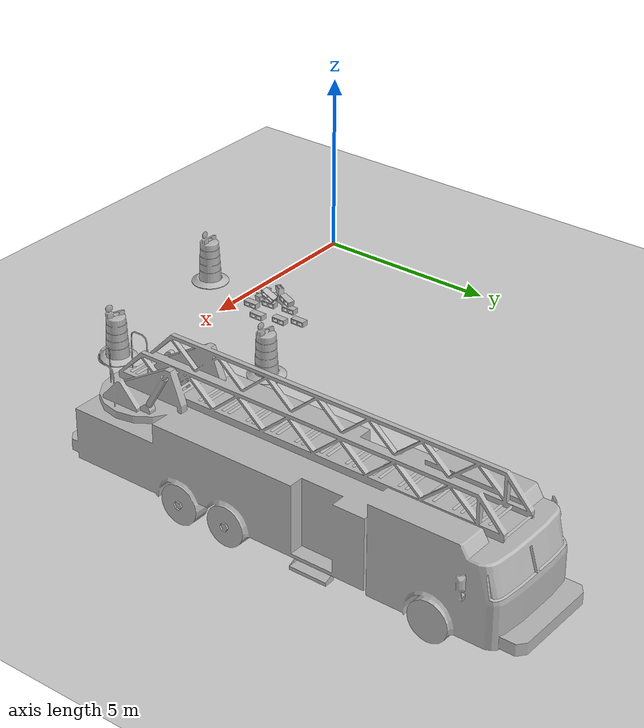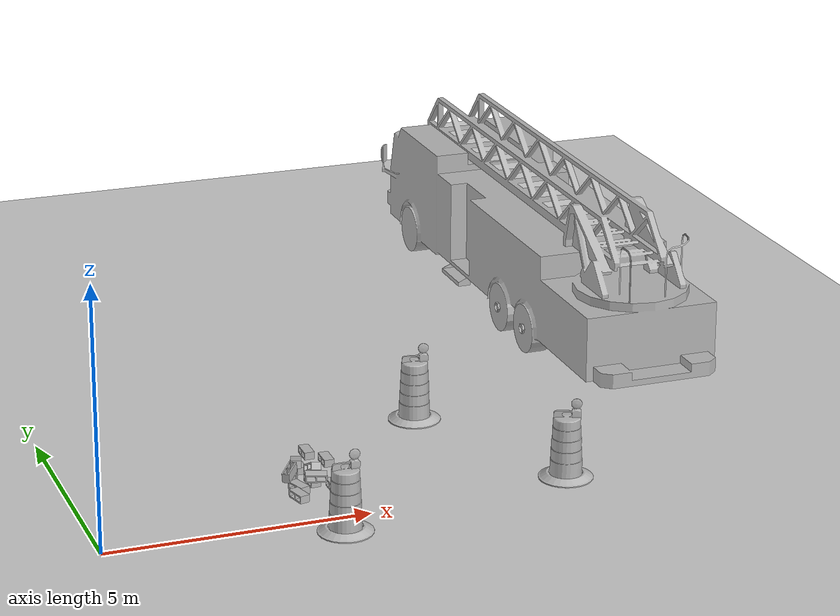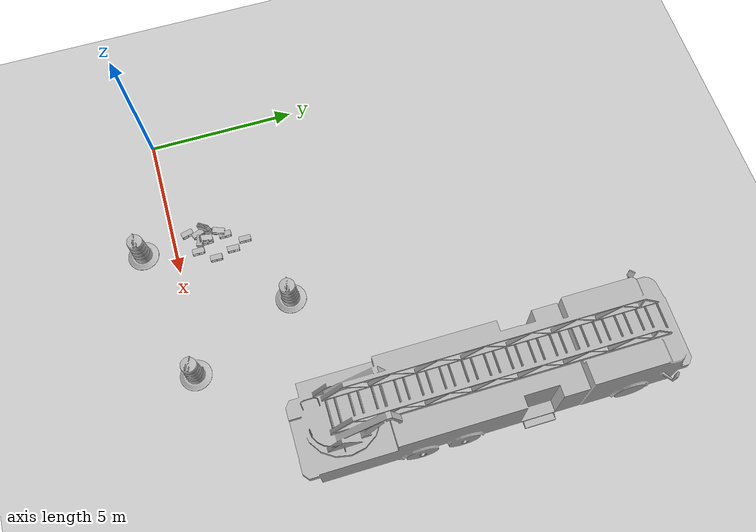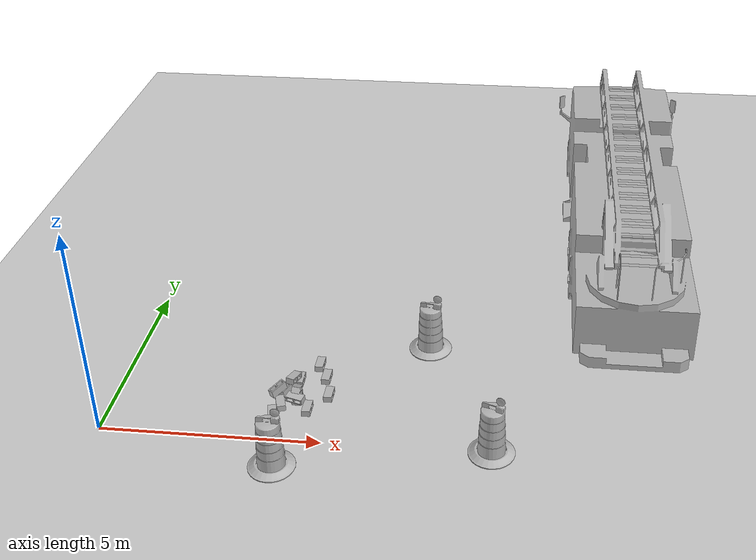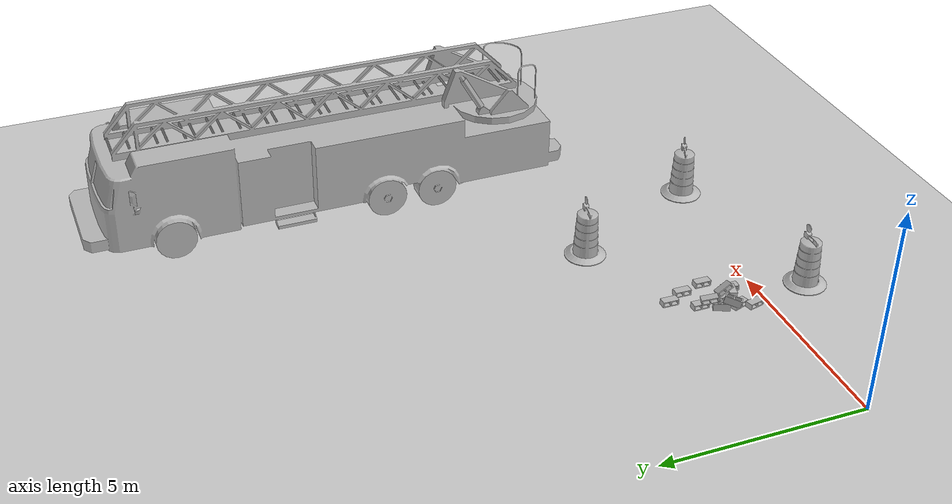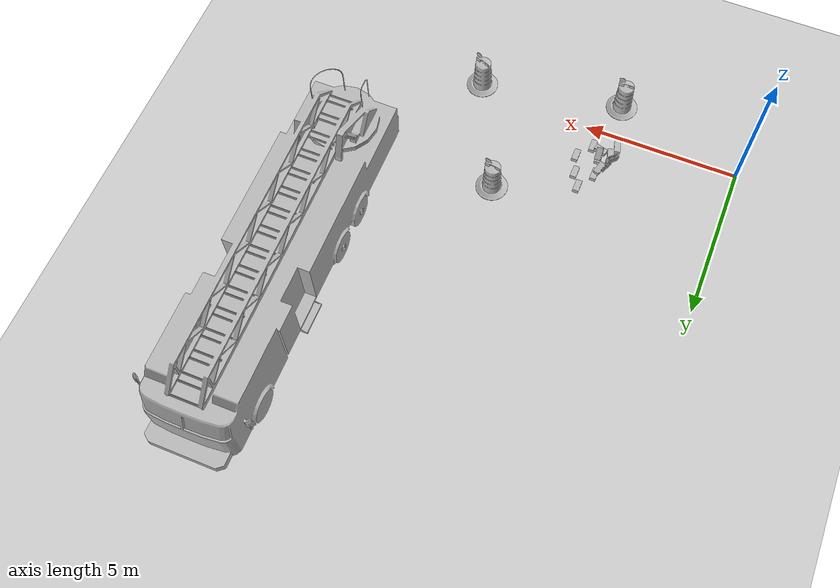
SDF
<sdf version="1.7">
 <world name="default">
  <model name="ground_plane">
   <static>1</static>
   <link name="link">
    <collision name="collision">
     <geometry><plane><normal>0 0 1</normal><size>100 100</size></plane></geometry>
     <surface><friction><ode><mu>100</mu><mu2>50</mu2></ode></friction></surface>
    </collision>
    <visual name="visual">
     <cast_shadows>0</cast_shadows>
     <geometry><plane><normal>0 0 1</normal><size>100 100</size></plane></geometry>
     <material>
      <script><uri>file://media/materials/scripts/gazebo.material</uri><name>Gazebo/Grey</name></script>
     </material>
    </visual>
   </link>
  </model>
  <model name="Construction Barrel_0">
   <link name="link">
    <inertial>
     <pose>0 0 0.4 0 -0 0</pose>
     <mass>500</mass>
     <inertia><ixx>51.2096</ixx><iyy>51.2096</iyy><izz>25</izz><ixy>0</ixy><ixz>0</ixz><iyz>0</iyz></inertia>
    </inertial>
    <collision name="collision">
     <geometry><mesh><uri>model://construction_barrel/meshes/construction_barrel.dae</uri></mesh></geometry>
    </collision>
    <visual name="visual">
     <geometry><mesh><uri>model://construction_barrel/meshes/construction_barrel.dae</uri></mesh></geometry>
    </visual>
   </link>
   <pose>4.15828 -1.02697 0.228145 0 -0 -0.010706</pose>
  </model>
  <model name="Construction Barrel_1">
   <link name="link">
    <inertial>
     <pose>0 0 0.4 0 -0 0</pose>
     <mass>500</mass>
     <inertia><ixx>51.2096</ixx><iyy>51.2096</iyy><izz>25</izz><ixy>0</ixy><ixz>0</ixz><iyz>0</iyz></inertia>
    </inertial>
    <collision name="collision">
     <geometry><mesh><uri>model://construction_barrel/meshes/construction_barrel.dae</uri></mesh></geometry>
    </collision>
    <visual name="visual">
     <geometry><mesh><uri>model://construction_barrel/meshes/construction_barrel.dae</uri></mesh></geometry>
    </visual>
   </link>
   <pose>7.05759 3.3172 0.228144 6e-06 -4e-06 -0.152859</pose>
  </model>
  <model name="Construction Barrel_2">
   <link name="link">
    <inertial>
     <pose>0 0 0.4 0 -0 0</pose>
     <mass>500</mass>
     <inertia><ixx>51.2096</ixx><iyy>51.2096</iyy><izz>25</izz><ixy>0</ixy><ixz>0</ixz><iyz>0</iyz></inertia>
    </inertial>
    <collision name="collision">
     <geometry><mesh><uri>model://construction_barrel/meshes/construction_barrel.dae</uri></mesh></geometry>
    </collision>
    <visual name="visual">
     <geometry><mesh><uri>model://construction_barrel/meshes/construction_barrel.dae</uri></mesh></geometry>
    </visual>
   </link>
   <pose>8.71691 -0.188469 0.228136 0 0 -0.36822</pose>
  </model>
  <model name="fire_truck">
   <static>1</static>
   <link name="link">
    <collision name="collision">
     <geometry>
      <mesh><scale>0.1 0.1 0.1</scale><uri>model://fire_truck/meshes/fire_truck.obj</uri></mesh>
     </geometry>
    </collision>
    <visual name="visual">
     <geometry>
      <mesh><scale>0.1 0.1 0.1</scale><uri>model://fire_truck/meshes/fire_truck.obj</uri></mesh>
     </geometry>
    </visual>
   </link>
   <pose>11.8116 8.84747 0.235461 0 -0 0</pose>
  </model>
  <model name="cinder_block_2">
   <link name="link">
    <inertial>
     <pose>0 0 0.071438 0 -0 0</pose>
     <mass>5</mass>
     <inertia>
      <ixx>0.06908</ixx>
      <ixy>0</ixy>
      <iyy>0.028705</iyy>
      <ixz>0</ixz>
      <iyz>0</iyz>
      <izz>0.073708</izz>
     </inertia>
    </inertial>
    <visual name="visual">
     <geometry><mesh><uri>model://cinder_block_2/meshes/cinder_block.dae</uri></mesh></geometry>
    </visual>
    <collision name="top">
     <pose>0 0 0.130175 0 -0 0</pose>
     <geometry><box><size>0.19368 0.396875 0.0254</size></box></geometry>
     <surface>
      <contact><ode><max_vel>0.1</max_vel><min_depth>0.001</min_depth></ode></contact>
      <friction><ode><mu>1</mu><mu2>1</mu2></ode></friction>
     </surface>
    </collision>
    <collision name="bottom">
     <pose>0 0 0.0127 0 -0 0</pose>
     <geometry><box><size>0.19368 0.396875 0.0254</size></box></geometry>
     <surface>
      <contact><ode><max_vel>0.1</max_vel><min_depth>0.001</min_depth></ode></contact>
      <friction><ode><mu>1</mu><mu2>1</mu2></ode></friction>
     </surface>
    </collision>
    <collision name="left">
     <pose>0 -0.185738 0.071438 0 -0 0</pose>
     <geometry><box><size>0.19368 0.0254 0.092075</size></box></geometry>
     <surface>
      <contact><ode><max_vel>0.1</max_vel><min_depth>0.001</min_depth></ode></contact>
      <friction><ode><mu>1</mu><mu2>1</mu2></ode></friction>
     </surface>
    </collision>
    <collision name="right">
     <pose>0 0.185738 0.071438 0 -0 0</pose>
     <geometry><box><size>0.19368 0.0254 0.092075</size></box></geometry>
     <surface>
      <contact><ode><max_vel>0.1</max_vel><min_depth>0.001</min_depth></ode></contact>
      <friction><ode><mu>1</mu><mu2>1</mu2></ode></friction>
     </surface>
    </collision>
    <collision name="middle">
     <pose>0 0 0.071438 0 -0 0</pose>
     <geometry><box><size>0.19368 0.0254 0.092075</size></box></geometry>
     <surface>
      <contact><ode><max_vel>0.1</max_vel><min_depth>0.001</min_depth></ode></contact>
      <friction><ode><mu>1</mu><mu2>1</mu2></ode></friction>
     </surface>
    </collision>
   </link>
   <pose>4.25382 1.12264 0.228121 4.9e-05 -0.000828 0.045278</pose>
  </model>
  <model name="cinder_block_2_clone">
   <link name="link">
    <inertial>
     <pose>0 0 0.071438 0 -0 0</pose>
     <mass>5</mass>
     <inertia>
      <ixx>0.06908</ixx>
      <ixy>0</ixy>
      <iyy>0.028705</iyy>
      <ixz>0</ixz>
      <iyz>0</iyz>
      <izz>0.073708</izz>
     </inertia>
    </inertial>
    <visual name="visual">
     <geometry><mesh><uri>model://cinder_block_2/meshes/cinder_block.dae</uri></mesh></geometry>
    </visual>
    <collision name="top">
     <pose>0 0 0.130175 0 -0 0</pose>
     <geometry><box><size>0.19368 0.396875 0.0254</size></box></geometry>
     <surface>
      <contact><ode><max_vel>0.1</max_vel><min_depth>0.001</min_depth></ode></contact>
      <friction><ode><mu>1</mu><mu2>1</mu2></ode></friction>
     </surface>
    </collision>
    <collision name="bottom">
     <pose>0 0 0.0127 0 -0 0</pose>
     <geometry><box><size>0.19368 0.396875 0.0254</size></box></geometry>
     <surface>
      <contact><ode><max_vel>0.1</max_vel><min_depth>0.001</min_depth></ode></contact>
      <friction><ode><mu>1</mu><mu2>1</mu2></ode></friction>
     </surface>
    </collision>
    <collision name="left">
     <pose>0 -0.185738 0.071438 0 -0 0</pose>
     <geometry><box><size>0.19368 0.0254 0.092075</size></box></geometry>
     <surface>
      <contact><ode><max_vel>0.1</max_vel><min_depth>0.001</min_depth></ode></contact>
      <friction><ode><mu>1</mu><mu2>1</mu2></ode></friction>
     </surface>
    </collision>
    <collision name="right">
     <pose>0 0.185738 0.071438 0 -0 0</pose>
     <geometry><box><size>0.19368 0.0254 0.092075</size></box></geometry>
     <surface>
      <contact><ode><max_vel>0.1</max_vel><min_depth>0.001</min_depth></ode></contact>
      <friction><ode><mu>1</mu><mu2>1</mu2></ode></friction>
     </surface>
    </collision>
    <collision name="middle">
     <pose>0 0 0.071438 0 -0 0</pose>
     <geometry><box><size>0.19368 0.0254 0.092075</size></box></geometry>
     <surface>
      <contact><ode><max_vel>0.1</max_vel><min_depth>0.001</min_depth></ode></contact>
      <friction><ode><mu>1</mu><mu2>1</mu2></ode></friction>
     </surface>
    </collision>
   </link>
   <pose>4.24985 1.0905 0.481159 -0.500722 0.170876 0.000211</pose>
  </model>
  <model name="cinder_block_2_clone_0">
   <link name="link">
    <inertial>
     <pose>0 0 0.071438 0 -0 0</pose>
     <mass>5</mass>
     <inertia>
      <ixx>0.06908</ixx>
      <ixy>0</ixy>
      <iyy>0.028705</iyy>
      <ixz>0</ixz>
      <iyz>0</iyz>
      <izz>0.073708</izz>
     </inertia>
    </inertial>
    <visual name="visual">
     <geometry><mesh><uri>model://cinder_block_2/meshes/cinder_block.dae</uri></mesh></geometry>
    </visual>
    <collision name="top">
     <pose>0 0 0.130175 0 -0 0</pose>
     <geometry><box><size>0.19368 0.396875 0.0254</size></box></geometry>
     <surface>
      <contact><ode><max_vel>0.1</max_vel><min_depth>0.001</min_depth></ode></contact>
      <friction><ode><mu>1</mu><mu2>1</mu2></ode></friction>
     </surface>
    </collision>
    <collision name="bottom">
     <pose>0 0 0.0127 0 -0 0</pose>
     <geometry><box><size>0.19368 0.396875 0.0254</size></box></geometry>
     <surface>
      <contact><ode><max_vel>0.1</max_vel><min_depth>0.001</min_depth></ode></contact>
      <friction><ode><mu>1</mu><mu2>1</mu2></ode></friction>
     </surface>
    </collision>
    <collision name="left">
     <pose>0 -0.185738 0.071438 0 -0 0</pose>
     <geometry><box><size>0.19368 0.0254 0.092075</size></box></geometry>
     <surface>
      <contact><ode><max_vel>0.1</max_vel><min_depth>0.001</min_depth></ode></contact>
      <friction><ode><mu>1</mu><mu2>1</mu2></ode></friction>
     </surface>
    </collision>
    <collision name="right">
     <pose>0 0.185738 0.071438 0 -0 0</pose>
     <geometry><box><size>0.19368 0.0254 0.092075</size></box></geometry>
     <surface>
      <contact><ode><max_vel>0.1</max_vel><min_depth>0.001</min_depth></ode></contact>
      <friction><ode><mu>1</mu><mu2>1</mu2></ode></friction>
     </surface>
    </collision>
    <collision name="middle">
     <pose>0 0 0.071438 0 -0 0</pose>
     <geometry><box><size>0.19368 0.0254 0.092075</size></box></geometry>
     <surface>
      <contact><ode><max_vel>0.1</max_vel><min_depth>0.001</min_depth></ode></contact>
      <friction><ode><mu>1</mu><mu2>1</mu2></ode></friction>
     </surface>
    </collision>
   </link>
   <pose>4.01765 1.30186 0.324991 -2.97102 -1.57061 2.58122</pose>
  </model>
  <model name="cinder_block_2_clone_2">
   <link name="link">
    <inertial>
     <pose>0 0 0.071438 0 -0 0</pose>
     <mass>5</mass>
     <inertia>
      <ixx>0.06908</ixx>
      <ixy>0</ixy>
      <iyy>0.028705</iyy>
      <ixz>0</ixz>
      <iyz>0</iyz>
      <izz>0.073708</izz>
     </inertia>
    </inertial>
    <visual name="visual">
     <geometry><mesh><uri>model://cinder_block_2/meshes/cinder_block.dae</uri></mesh></geometry>
    </visual>
    <collision name="top">
     <pose>0 0 0.130175 0 -0 0</pose>
     <geometry><box><size>0.19368 0.396875 0.0254</size></box></geometry>
     <surface>
      <contact><ode><max_vel>0.1</max_vel><min_depth>0.001</min_depth></ode></contact>
      <friction><ode><mu>1</mu><mu2>1</mu2></ode></friction>
     </surface>
    </collision>
    <collision name="bottom">
     <pose>0 0 0.0127 0 -0 0</pose>
     <geometry><box><size>0.19368 0.396875 0.0254</size></box></geometry>
     <surface>
      <contact><ode><max_vel>0.1</max_vel><min_depth>0.001</min_depth></ode></contact>
      <friction><ode><mu>1</mu><mu2>1</mu2></ode></friction>
     </surface>
    </collision>
    <collision name="left">
     <pose>0 -0.185738 0.071438 0 -0 0</pose>
     <geometry><box><size>0.19368 0.0254 0.092075</size></box></geometry>
     <surface>
      <contact><ode><max_vel>0.1</max_vel><min_depth>0.001</min_depth></ode></contact>
      <friction><ode><mu>1</mu><mu2>1</mu2></ode></friction>
     </surface>
    </collision>
    <collision name="right">
     <pose>0 0.185738 0.071438 0 -0 0</pose>
     <geometry><box><size>0.19368 0.0254 0.092075</size></box></geometry>
     <surface>
      <contact><ode><max_vel>0.1</max_vel><min_depth>0.001</min_depth></ode></contact>
      <friction><ode><mu>1</mu><mu2>1</mu2></ode></friction>
     </surface>
    </collision>
    <collision name="middle">
     <pose>0 0 0.071438 0 -0 0</pose>
     <geometry><box><size>0.19368 0.0254 0.092075</size></box></geometry>
     <surface>
      <contact><ode><max_vel>0.1</max_vel><min_depth>0.001</min_depth></ode></contact>
      <friction><ode><mu>1</mu><mu2>1</mu2></ode></friction>
     </surface>
    </collision>
   </link>
   <pose>4.55373 0.769165 0.227661 -0.000512 -0.000258 -1.9e-05</pose>
  </model>
  <model name="cinder_block_2_clone_3">
   <link name="link">
    <inertial>
     <pose>0 0 0.071438 0 -0 0</pose>
     <mass>5</mass>
     <inertia>
      <ixx>0.06908</ixx>
      <ixy>0</ixy>
      <iyy>0.028705</iyy>
      <ixz>0</ixz>
      <iyz>0</iyz>
      <izz>0.073708</izz>
     </inertia>
    </inertial>
    <visual name="visual">
     <geometry><mesh><uri>model://cinder_block_2/meshes/cinder_block.dae</uri></mesh></geometry>
    </visual>
    <collision name="top">
     <pose>0 0 0.130175 0 -0 0</pose>
     <geometry><box><size>0.19368 0.396875 0.0254</size></box></geometry>
     <surface>
      <contact><ode><max_vel>0.1</max_vel><min_depth>0.001</min_depth></ode></contact>
      <friction><ode><mu>1</mu><mu2>1</mu2></ode></friction>
     </surface>
    </collision>
    <collision name="bottom">
     <pose>0 0 0.0127 0 -0 0</pose>
     <geometry><box><size>0.19368 0.396875 0.0254</size></box></geometry>
     <surface>
      <contact><ode><max_vel>0.1</max_vel><min_depth>0.001</min_depth></ode></contact>
      <friction><ode><mu>1</mu><mu2>1</mu2></ode></friction>
     </surface>
    </collision>
    <collision name="left">
     <pose>0 -0.185738 0.071438 0 -0 0</pose>
     <geometry><box><size>0.19368 0.0254 0.092075</size></box></geometry>
     <surface>
      <contact><ode><max_vel>0.1</max_vel><min_depth>0.001</min_depth></ode></contact>
      <friction><ode><mu>1</mu><mu2>1</mu2></ode></friction>
     </surface>
    </collision>
    <collision name="right">
     <pose>0 0.185738 0.071438 0 -0 0</pose>
     <geometry><box><size>0.19368 0.0254 0.092075</size></box></geometry>
     <surface>
      <contact><ode><max_vel>0.1</max_vel><min_depth>0.001</min_depth></ode></contact>
      <friction><ode><mu>1</mu><mu2>1</mu2></ode></friction>
     </surface>
    </collision>
    <collision name="middle">
     <pose>0 0 0.071438 0 -0 0</pose>
     <geometry><box><size>0.19368 0.0254 0.092075</size></box></geometry>
     <surface>
      <contact><ode><max_vel>0.1</max_vel><min_depth>0.001</min_depth></ode></contact>
      <friction><ode><mu>1</mu><mu2>1</mu2></ode></friction>
     </surface>
    </collision>
   </link>
   <pose>4.18804 1.75407 0.228097 0.000186 0.000588 -0.000247</pose>
  </model>
  <model name="cinder_block_2_clone_4">
   <link name="link">
    <inertial>
     <pose>0 0 0.071438 0 -0 0</pose>
     <mass>5</mass>
     <inertia>
      <ixx>0.06908</ixx>
      <ixy>0</ixy>
      <iyy>0.028705</iyy>
      <ixz>0</ixz>
      <iyz>0</iyz>
      <izz>0.073708</izz>
     </inertia>
    </inertial>
    <visual name="visual">
     <geometry><mesh><uri>model://cinder_block_2/meshes/cinder_block.dae</uri></mesh></geometry>
    </visual>
    <collision name="top">
     <pose>0 0 0.130175 0 -0 0</pose>
     <geometry><box><size>0.19368 0.396875 0.0254</size></box></geometry>
     <surface>
      <contact><ode><max_vel>0.1</max_vel><min_depth>0.001</min_depth></ode></contact>
      <friction><ode><mu>1</mu><mu2>1</mu2></ode></friction>
     </surface>
    </collision>
    <collision name="bottom">
     <pose>0 0 0.0127 0 -0 0</pose>
     <geometry><box><size>0.19368 0.396875 0.0254</size></box></geometry>
     <surface>
      <contact><ode><max_vel>0.1</max_vel><min_depth>0.001</min_depth></ode></contact>
      <friction><ode><mu>1</mu><mu2>1</mu2></ode></friction>
     </surface>
    </collision>
    <collision name="left">
     <pose>0 -0.185738 0.071438 0 -0 0</pose>
     <geometry><box><size>0.19368 0.0254 0.092075</size></box></geometry>
     <surface>
      <contact><ode><max_vel>0.1</max_vel><min_depth>0.001</min_depth></ode></contact>
      <friction><ode><mu>1</mu><mu2>1</mu2></ode></friction>
     </surface>
    </collision>
    <collision name="right">
     <pose>0 0.185738 0.071438 0 -0 0</pose>
     <geometry><box><size>0.19368 0.0254 0.092075</size></box></geometry>
     <surface>
      <contact><ode><max_vel>0.1</max_vel><min_depth>0.001</min_depth></ode></contact>
      <friction><ode><mu>1</mu><mu2>1</mu2></ode></friction>
     </surface>
    </collision>
    <collision name="middle">
     <pose>0 0 0.071438 0 -0 0</pose>
     <geometry><box><size>0.19368 0.0254 0.092075</size></box></geometry>
     <surface>
      <contact><ode><max_vel>0.1</max_vel><min_depth>0.001</min_depth></ode></contact>
      <friction><ode><mu>1</mu><mu2>1</mu2></ode></friction>
     </surface>
    </collision>
   </link>
   <pose>3.81412 0.534945 0.370996 3.14138 -0.002376 -2.88925</pose>
  </model>
  <model name="cinder_block_2_clone_5">
   <link name="link">
    <inertial>
     <pose>0 0 0.071438 0 -0 0</pose>
     <mass>5</mass>
     <inertia>
      <ixx>0.06908</ixx>
      <ixy>0</ixy>
      <iyy>0.028705</iyy>
      <ixz>0</ixz>
      <iyz>0</iyz>
      <izz>0.073708</izz>
     </inertia>
    </inertial>
    <visual name="visual">
     <geometry><mesh><uri>model://cinder_block_2/meshes/cinder_block.dae</uri></mesh></geometry>
    </visual>
    <collision name="top">
     <pose>0 0 0.130175 0 -0 0</pose>
     <geometry><box><size>0.19368 0.396875 0.0254</size></box></geometry>
     <surface>
      <contact><ode><max_vel>0.1</max_vel><min_depth>0.001</min_depth></ode></contact>
      <friction><ode><mu>1</mu><mu2>1</mu2></ode></friction>
     </surface>
    </collision>
    <collision name="bottom">
     <pose>0 0 0.0127 0 -0 0</pose>
     <geometry><box><size>0.19368 0.396875 0.0254</size></box></geometry>
     <surface>
      <contact><ode><max_vel>0.1</max_vel><min_depth>0.001</min_depth></ode></contact>
      <friction><ode><mu>1</mu><mu2>1</mu2></ode></friction>
     </surface>
    </collision>
    <collision name="left">
     <pose>0 -0.185738 0.071438 0 -0 0</pose>
     <geometry><box><size>0.19368 0.0254 0.092075</size></box></geometry>
     <surface>
      <contact><ode><max_vel>0.1</max_vel><min_depth>0.001</min_depth></ode></contact>
      <friction><ode><mu>1</mu><mu2>1</mu2></ode></friction>
     </surface>
    </collision>
    <collision name="right">
     <pose>0 0.185738 0.071438 0 -0 0</pose>
     <geometry><box><size>0.19368 0.0254 0.092075</size></box></geometry>
     <surface>
      <contact><ode><max_vel>0.1</max_vel><min_depth>0.001</min_depth></ode></contact>
      <friction><ode><mu>1</mu><mu2>1</mu2></ode></friction>
     </surface>
    </collision>
    <collision name="middle">
     <pose>0 0 0.071438 0 -0 0</pose>
     <geometry><box><size>0.19368 0.0254 0.092075</size></box></geometry>
     <surface>
      <contact><ode><max_vel>0.1</max_vel><min_depth>0.001</min_depth></ode></contact>
      <friction><ode><mu>1</mu><mu2>1</mu2></ode></friction>
     </surface>
    </collision>
   </link>
   <pose>3.92208 0.883351 0.228139 2e-05 -0.000135 0.330905</pose>
  </model>
  <model name="cinder_block_2_clone_5_clone">
   <link name="link">
    <inertial>
     <pose>0 0 0.071438 0 -0 0</pose>
     <mass>5</mass>
     <inertia>
      <ixx>0.06908</ixx>
      <ixy>0</ixy>
      <iyy>0.028705</iyy>
      <ixz>0</ixz>
      <iyz>0</iyz>
      <izz>0.073708</izz>
     </inertia>
    </inertial>
    <visual name="visual">
     <geometry><mesh><uri>model://cinder_block_2/meshes/cinder_block.dae</uri></mesh></geometry>
    </visual>
    <collision name="top">
     <pose>0 0 0.130175 0 -0 0</pose>
     <geometry><box><size>0.19368 0.396875 0.0254</size></box></geometry>
     <surface>
      <contact><ode><max_vel>0.1</max_vel><min_depth>0.001</min_depth></ode></contact>
      <friction><ode><mu>1</mu><mu2>1</mu2></ode></friction>
     </surface>
    </collision>
    <collision name="bottom">
     <pose>0 0 0.0127 0 -0 0</pose>
     <geometry><box><size>0.19368 0.396875 0.0254</size></box></geometry>
     <surface>
      <contact><ode><max_vel>0.1</max_vel><min_depth>0.001</min_depth></ode></contact>
      <friction><ode><mu>1</mu><mu2>1</mu2></ode></friction>
     </surface>
    </collision>
    <collision name="left">
     <pose>0 -0.185738 0.071438 0 -0 0</pose>
     <geometry><box><size>0.19368 0.0254 0.092075</size></box></geometry>
     <surface>
      <contact><ode><max_vel>0.1</max_vel><min_depth>0.001</min_depth></ode></contact>
      <friction><ode><mu>1</mu><mu2>1</mu2></ode></friction>
     </surface>
    </collision>
    <collision name="right">
     <pose>0 0.185738 0.071438 0 -0 0</pose>
     <geometry><box><size>0.19368 0.0254 0.092075</size></box></geometry>
     <surface>
      <contact><ode><max_vel>0.1</max_vel><min_depth>0.001</min_depth></ode></contact>
      <friction><ode><mu>1</mu><mu2>1</mu2></ode></friction>
     </surface>
    </collision>
    <collision name="middle">
     <pose>0 0 0.071438 0 -0 0</pose>
     <geometry><box><size>0.19368 0.0254 0.092075</size></box></geometry>
     <surface>
      <contact><ode><max_vel>0.1</max_vel><min_depth>0.001</min_depth></ode></contact>
      <friction><ode><mu>1</mu><mu2>1</mu2></ode></friction>
     </surface>
    </collision>
   </link>
   <pose>4.94965 1.29341 0.228111 1e-06 -0.00037 -0.014641</pose>
  </model>
  <model name="cinder_block_2_clone_5_clone_clone">
   <link name="link">
    <inertial>
     <pose>0 0 0.071438 0 -0 0</pose>
     <mass>5</mass>
     <inertia>
      <ixx>0.06908</ixx>
      <ixy>0</ixy>
      <iyy>0.028705</iyy>
      <ixz>0</ixz>
      <iyz>0</iyz>
      <izz>0.073708</izz>
     </inertia>
    </inertial>
    <visual name="visual">
     <geometry><mesh><uri>model://cinder_block_2/meshes/cinder_block.dae</uri></mesh></geometry>
    </visual>
    <collision name="top">
     <pose>0 0 0.130175 0 -0 0</pose>
     <geometry><box><size>0.19368 0.396875 0.0254</size></box></geometry>
     <surface>
      <contact><ode><max_vel>0.1</max_vel><min_depth>0.001</min_depth></ode></contact>
      <friction><ode><mu>1</mu><mu2>1</mu2></ode></friction>
     </surface>
    </collision>
    <collision name="bottom">
     <pose>0 0 0.0127 0 -0 0</pose>
     <geometry><box><size>0.19368 0.396875 0.0254</size></box></geometry>
     <surface>
      <contact><ode><max_vel>0.1</max_vel><min_depth>0.001</min_depth></ode></contact>
      <friction><ode><mu>1</mu><mu2>1</mu2></ode></friction>
     </surface>
    </collision>
    <collision name="left">
     <pose>0 -0.185738 0.071438 0 -0 0</pose>
     <geometry><box><size>0.19368 0.0254 0.092075</size></box></geometry>
     <surface>
      <contact><ode><max_vel>0.1</max_vel><min_depth>0.001</min_depth></ode></contact>
      <friction><ode><mu>1</mu><mu2>1</mu2></ode></friction>
     </surface>
    </collision>
    <collision name="right">
     <pose>0 0.185738 0.071438 0 -0 0</pose>
     <geometry><box><size>0.19368 0.0254 0.092075</size></box></geometry>
     <surface>
      <contact><ode><max_vel>0.1</max_vel><min_depth>0.001</min_depth></ode></contact>
      <friction><ode><mu>1</mu><mu2>1</mu2></ode></friction>
     </surface>
    </collision>
    <collision name="middle">
     <pose>0 0 0.071438 0 -0 0</pose>
     <geometry><box><size>0.19368 0.0254 0.092075</size></box></geometry>
     <surface>
      <contact><ode><max_vel>0.1</max_vel><min_depth>0.001</min_depth></ode></contact>
      <friction><ode><mu>1</mu><mu2>1</mu2></ode></friction>
     </surface>
    </collision>
   </link>
   <pose>4.78556 1.90589 0.228111 1e-06 -0.000372 -0.014641</pose>
  </model>
  <model name="cinder_block_2_clone_5_clone_clone_0">
   <link name="link">
    <inertial>
     <pose>0 0 0.071438 0 -0 0</pose>
     <mass>5</mass>
     <inertia>
      <ixx>0.06908</ixx>
      <ixy>0</ixy>
      <iyy>0.028705</iyy>
      <ixz>0</ixz>
      <iyz>0</iyz>
      <izz>0.073708</izz>
     </inertia>
    </inertial>
    <visual name="visual">
     <geometry><mesh><uri>model://cinder_block_2/meshes/cinder_block.dae</uri></mesh></geometry>
    </visual>
    <collision name="top">
     <pose>0 0 0.130175 0 -0 0</pose>
     <geometry><box><size>0.19368 0.396875 0.0254</size></box></geometry>
     <surface>
      <contact><ode><max_vel>0.1</max_vel><min_depth>0.001</min_depth></ode></contact>
      <friction><ode><mu>1</mu><mu2>1</mu2></ode></friction>
     </surface>
    </collision>
    <collision name="bottom">
     <pose>0 0 0.0127 0 -0 0</pose>
     <geometry><box><size>0.19368 0.396875 0.0254</size></box></geometry>
     <surface>
      <contact><ode><max_vel>0.1</max_vel><min_depth>0.001</min_depth></ode></contact>
      <friction><ode><mu>1</mu><mu2>1</mu2></ode></friction>
     </surface>
    </collision>
    <collision name="left">
     <pose>0 -0.185738 0.071438 0 -0 0</pose>
     <geometry><box><size>0.19368 0.0254 0.092075</size></box></geometry>
     <surface>
      <contact><ode><max_vel>0.1</max_vel><min_depth>0.001</min_depth></ode></contact>
      <friction><ode><mu>1</mu><mu2>1</mu2></ode></friction>
     </surface>
    </collision>
    <collision name="right">
     <pose>0 0.185738 0.071438 0 -0 0</pose>
     <geometry><box><size>0.19368 0.0254 0.092075</size></box></geometry>
     <surface>
      <contact><ode><max_vel>0.1</max_vel><min_depth>0.001</min_depth></ode></contact>
      <friction><ode><mu>1</mu><mu2>1</mu2></ode></friction>
     </surface>
    </collision>
    <collision name="middle">
     <pose>0 0 0.071438 0 -0 0</pose>
     <geometry><box><size>0.19368 0.0254 0.092075</size></box></geometry>
     <surface>
      <contact><ode><max_vel>0.1</max_vel><min_depth>0.001</min_depth></ode></contact>
      <friction><ode><mu>1</mu><mu2>1</mu2></ode></friction>
     </surface>
    </collision>
   </link>
   <pose>4.5481 2.35605 0.228111 1e-06 -0.000372 -0.014641</pose>
  </model>
  <model name="cinder_block_2_clone_5_clone_clone_1">
   <link name="link">
    <inertial>
     <pose>0 0 0.071438 0 -0 0</pose>
     <mass>5</mass>
     <inertia>
      <ixx>0.06908</ixx>
      <ixy>0</ixy>
      <iyy>0.028705</iyy>
      <ixz>0</ixz>
      <iyz>0</iyz>
      <izz>0.073708</izz>
     </inertia>
    </inertial>
    <visual name="visual">
     <geometry><mesh><uri>model://cinder_block_2/meshes/cinder_block.dae</uri></mesh></geometry>
    </visual>
    <collision name="top">
     <pose>0 0 0.130175 0 -0 0</pose>
     <geometry><box><size>0.19368 0.396875 0.0254</size></box></geometry>
     <surface>
      <contact><ode><max_vel>0.1</max_vel><min_depth>0.001</min_depth></ode></contact>
      <friction><ode><mu>1</mu><mu2>1</mu2></ode></friction>
     </surface>
    </collision>
    <collision name="bottom">
     <pose>0 0 0.0127 0 -0 0</pose>
     <geometry><box><size>0.19368 0.396875 0.0254</size></box></geometry>
     <surface>
      <contact><ode><max_vel>0.1</max_vel><min_depth>0.001</min_depth></ode></contact>
      <friction><ode><mu>1</mu><mu2>1</mu2></ode></friction>
     </surface>
    </collision>
    <collision name="left">
     <pose>0 -0.185738 0.071438 0 -0 0</pose>
     <geometry><box><size>0.19368 0.0254 0.092075</size></box></geometry>
     <surface>
      <contact><ode><max_vel>0.1</max_vel><min_depth>0.001</min_depth></ode></contact>
      <friction><ode><mu>1</mu><mu2>1</mu2></ode></friction>
     </surface>
    </collision>
    <collision name="right">
     <pose>0 0.185738 0.071438 0 -0 0</pose>
     <geometry><box><size>0.19368 0.0254 0.092075</size></box></geometry>
     <surface>
      <contact><ode><max_vel>0.1</max_vel><min_depth>0.001</min_depth></ode></contact>
      <friction><ode><mu>1</mu><mu2>1</mu2></ode></friction>
     </surface>
    </collision>
    <collision name="middle">
     <pose>0 0 0.071438 0 -0 0</pose>
     <geometry><box><size>0.19368 0.0254 0.092075</size></box></geometry>
     <surface>
      <contact><ode><max_vel>0.1</max_vel><min_depth>0.001</min_depth></ode></contact>
      <friction><ode><mu>1</mu><mu2>1</mu2></ode></friction>
     </surface>
    </collision>
   </link>
   <pose>4.08561 1.56902 0.408156 -0.180568 0.016676 -0.29771</pose>
  </model>
  <model name="cinder_block_2_clone_5_clone_clone_2">
   <link name="link">
    <inertial>
     <pose>0 0 0.071438 0 -0 0</pose>
     <mass>5</mass>
     <inertia>
      <ixx>0.06908</ixx>
      <ixy>0</ixy>
      <iyy>0.028705</iyy>
      <ixz>0</ixz>
      <iyz>0</iyz>
      <izz>0.073708</izz>
     </inertia>
    </inertial>
    <visual name="visual">
     <geometry><mesh><uri>model://cinder_block_2/meshes/cinder_block.dae</uri></mesh></geometry>
    </visual>
    <collision name="top">
     <pose>0 0 0.130175 0 -0 0</pose>
     <geometry><box><size>0.19368 0.396875 0.0254</size></box></geometry>
     <surface>
      <contact><ode><max_vel>0.1</max_vel><min_depth>0.001</min_depth></ode></contact>
      <friction><ode><mu>1</mu><mu2>1</mu2></ode></friction>
     </surface>
    </collision>
    <collision name="bottom">
     <pose>0 0 0.0127 0 -0 0</pose>
     <geometry><box><size>0.19368 0.396875 0.0254</size></box></geometry>
     <surface>
      <contact><ode><max_vel>0.1</max_vel><min_depth>0.001</min_depth></ode></contact>
      <friction><ode><mu>1</mu><mu2>1</mu2></ode></friction>
     </surface>
    </collision>
    <collision name="left">
     <pose>0 -0.185738 0.071438 0 -0 0</pose>
     <geometry><box><size>0.19368 0.0254 0.092075</size></box></geometry>
     <surface>
      <contact><ode><max_vel>0.1</max_vel><min_depth>0.001</min_depth></ode></contact>
      <friction><ode><mu>1</mu><mu2>1</mu2></ode></friction>
     </surface>
    </collision>
    <collision name="right">
     <pose>0 0.185738 0.071438 0 -0 0</pose>
     <geometry><box><size>0.19368 0.0254 0.092075</size></box></geometry>
     <surface>
      <contact><ode><max_vel>0.1</max_vel><min_depth>0.001</min_depth></ode></contact>
      <friction><ode><mu>1</mu><mu2>1</mu2></ode></friction>
     </surface>
    </collision>
    <collision name="middle">
     <pose>0 0 0.071438 0 -0 0</pose>
     <geometry><box><size>0.19368 0.0254 0.092075</size></box></geometry>
     <surface>
      <contact><ode><max_vel>0.1</max_vel><min_depth>0.001</min_depth></ode></contact>
      <friction><ode><mu>1</mu><mu2>1</mu2></ode></friction>
     </surface>
    </collision>
   </link>
   <pose>3.76378 1.16594 0.508332 1.58227 1.35474 0.908729</pose>
  </model>
  <model name="cinder_block_2_clone_5_clone_clone_10">
   <link name="link">
    <inertial>
     <pose>0 0 0.071438 0 -0 0</pose>
     <mass>5</mass>
     <inertia>
      <ixx>0.06908</ixx>
      <ixy>0</ixy>
      <iyy>0.028705</iyy>
      <ixz>0</ixz>
      <iyz>0</iyz>
      <izz>0.073708</izz>
     </inertia>
    </inertial>
    <visual name="visual">
     <geometry><mesh><uri>model://cinder_block_2/meshes/cinder_block.dae</uri></mesh></geometry>
    </visual>
    <collision name="top">
     <pose>0 0 0.130175 0 -0 0</pose>
     <geometry><box><size>0.19368 0.396875 0.0254</size></box></geometry>
     <surface>
      <contact><ode><max_vel>0.1</max_vel><min_depth>0.001</min_depth></ode></contact>
      <friction><ode><mu>1</mu><mu2>1</mu2></ode></friction>
     </surface>
    </collision>
    <collision name="bottom">
     <pose>0 0 0.0127 0 -0 0</pose>
     <geometry><box><size>0.19368 0.396875 0.0254</size></box></geometry>
     <surface>
      <contact><ode><max_vel>0.1</max_vel><min_depth>0.001</min_depth></ode></contact>
      <friction><ode><mu>1</mu><mu2>1</mu2></ode></friction>
     </surface>
    </collision>
    <collision name="left">
     <pose>0 -0.185738 0.071438 0 -0 0</pose>
     <geometry><box><size>0.19368 0.0254 0.092075</size></box></geometry>
     <surface>
      <contact><ode><max_vel>0.1</max_vel><min_depth>0.001</min_depth></ode></contact>
      <friction><ode><mu>1</mu><mu2>1</mu2></ode></friction>
     </surface>
    </collision>
    <collision name="right">
     <pose>0 0.185738 0.071438 0 -0 0</pose>
     <geometry><box><size>0.19368 0.0254 0.092075</size></box></geometry>
     <surface>
      <contact><ode><max_vel>0.1</max_vel><min_depth>0.001</min_depth></ode></contact>
      <friction><ode><mu>1</mu><mu2>1</mu2></ode></friction>
     </surface>
    </collision>
    <collision name="middle">
     <pose>0 0 0.071438 0 -0 0</pose>
     <geometry><box><size>0.19368 0.0254 0.092075</size></box></geometry>
     <surface>
      <contact><ode><max_vel>0.1</max_vel><min_depth>0.001</min_depth></ode></contact>
      <friction><ode><mu>1</mu><mu2>1</mu2></ode></friction>
     </surface>
    </collision>
   </link>
   <pose>4.25955 0.908259 0.514344 -3.12202 -0.114781 1.30005</pose>
  </model>
 </world>
</sdf>
